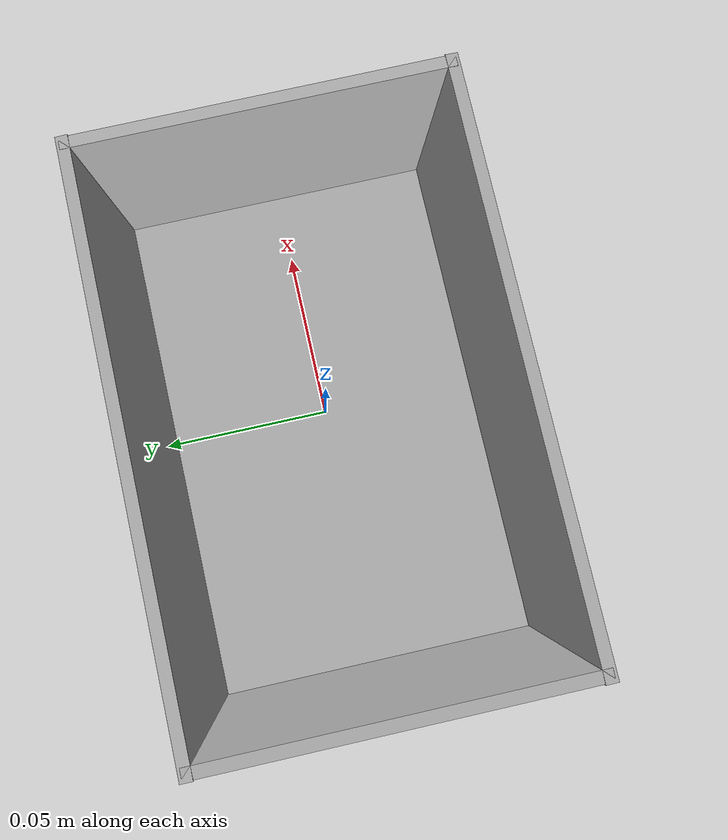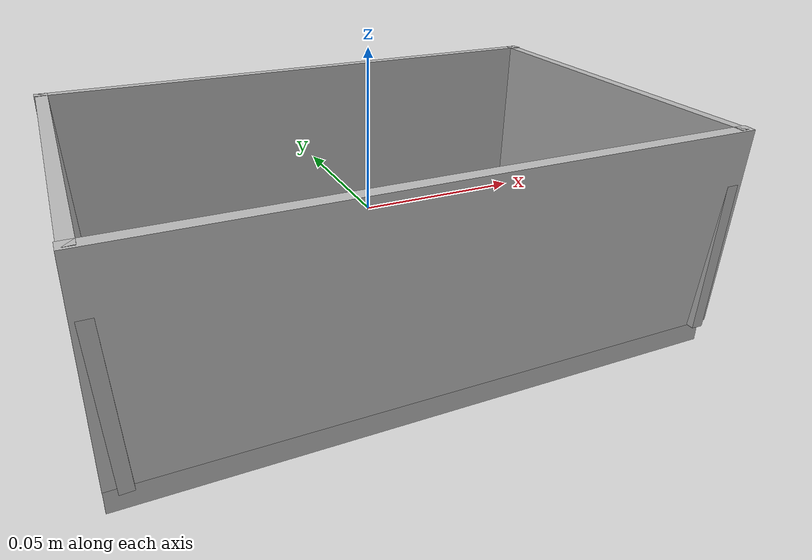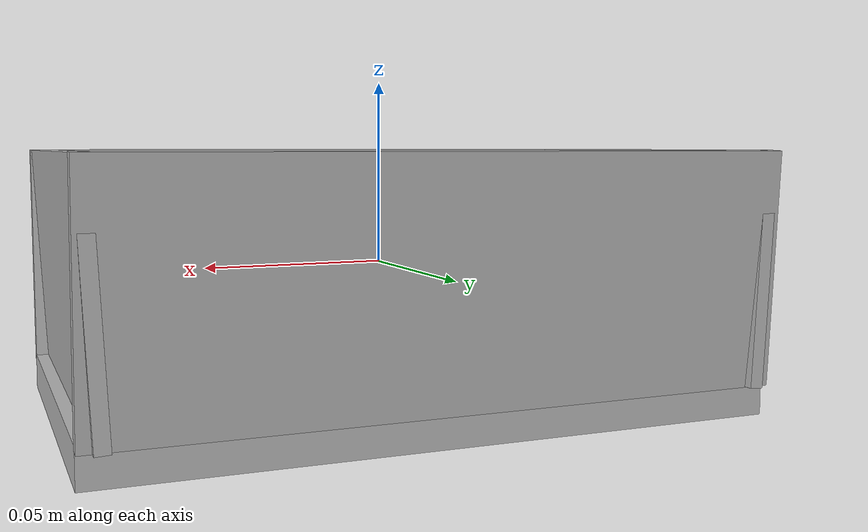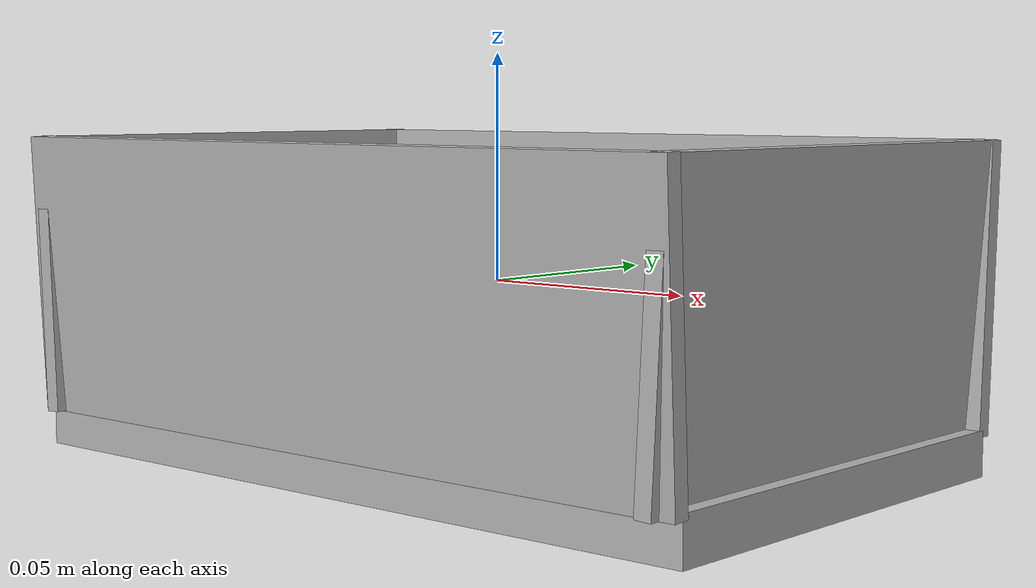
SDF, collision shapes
<?xml version="1.0" ?>
<!-- |    This document was autogenerated by xacro from container_amuse_body_small_black.sdf.xacro | -->
<!-- |    EDITING THIS FILE BY HAND IS NOT RECOMMENDED                                 | -->
<sdf version="1.6" xmlns:drake="drake.mit.edu">
  <model name="container_amuse_body_black">
    <link name="container_amuse_body_black">
      <pose>0 0 0 0 0 0</pose>
      <inertial>
        <pose>1.0568e-17 -8.6609e-17 -0.0093425 0 0 0</pose>
        <mass>0.037846</mass>
        <inertia>
          <ixx>8.7527e-05</ixx>
          <ixy>-1.6421e-19</ixy>
          <ixz>1.5401e-21</ixz>
          <iyy>0.00016503</iyy>
          <iyz>3.4579e-20</iyz>
          <izz>0.00021492</izz>
        </inertia>
      </inertial>
      <visual name="container_amuse_body_black">
        <!-- The orientation of the object in the glTF is not upright,
        so we must rotate by 90 degress here to make it so. -->
        <pose>0 0 0 -1.5708 0 0</pose>
        <geometry>
          <mesh>
            <uri>/data/kylehatch/lbm_eval/lbm_eval_models/kitchen_accessories/bins/assets/container_amuse_body_black.gltf</uri>
            <!-- Note: This model is explicitly scaled down. -->
            <scale>0.75 0.75 0.75</scale>
          </mesh>
        </geometry>
      </visual>
      <!-- Left wall collision -->
      <collision name="container_amuse_body_black_left_wall">
        <pose>-0.08625 0 0 0 -0.05 0</pose>
        <geometry>
          <box>
            <size>0.00375 0.11625 0.063</size>
          </box>
        </geometry>
        <drake:proximity_properties>
          <drake:mu_dynamic>0.3</drake:mu_dynamic>
          <drake:mu_static>0.3</drake:mu_static>
          <drake:hydroelastic_modulus>1e7</drake:hydroelastic_modulus>
          <drake:hunt_crossley_dissipation>40</drake:hunt_crossley_dissipation>
          <drake:compliant_hydroelastic/>
        </drake:proximity_properties>
      </collision>
      <!-- Right wall collision -->
      <collision name="container_amuse_body_black_right_wall">
        <pose>0.08625 0 0 0 0.05 0</pose>
        <geometry>
          <box>
            <size>0.00375 0.11625 0.063</size>
          </box>
        </geometry>
        <drake:proximity_properties>
          <drake:mu_dynamic>0.3</drake:mu_dynamic>
          <drake:mu_static>0.3</drake:mu_static>
          <drake:hydroelastic_modulus>1e7</drake:hydroelastic_modulus>
          <drake:hunt_crossley_dissipation>40</drake:hunt_crossley_dissipation>
          <drake:compliant_hydroelastic/>
        </drake:proximity_properties>
      </collision>
      <!-- Bottom Wall collision -->
      <collision name="container_amuse_body_black_bottom_wall">
        <pose>0 0.0555 0 -0.05 0 0</pose>
        <geometry>
          <box>
            <size>0.18 0.00375 0.063</size>
          </box>
        </geometry>
        <drake:proximity_properties>
          <drake:mu_dynamic>0.3</drake:mu_dynamic>
          <drake:mu_static>0.3</drake:mu_static>
          <drake:hydroelastic_modulus>1e7</drake:hydroelastic_modulus>
          <drake:hunt_crossley_dissipation>40</drake:hunt_crossley_dissipation>
          <drake:compliant_hydroelastic/>
        </drake:proximity_properties>
      </collision>
      <!-- Top wall collision -->
      <collision name="container_amuse_body_black_top_wall">
        <pose>0 -0.0555 0 0.05 0 0</pose>
        <geometry>
          <box>
            <size>0.18 0.00375 0.063</size>
          </box>
        </geometry>
        <drake:proximity_properties>
          <drake:mu_dynamic>0.3</drake:mu_dynamic>
          <drake:mu_static>0.3</drake:mu_static>
          <drake:hydroelastic_modulus>1e7</drake:hydroelastic_modulus>
          <drake:hunt_crossley_dissipation>40</drake:hunt_crossley_dissipation>
          <drake:compliant_hydroelastic/>
        </drake:proximity_properties>
      </collision>
      <!-- Floor collision -->
      <collision name="container_amuse_body_black_floor">
        <pose>0 0 -0.035 0 0 0</pose>
        <geometry>
          <box>
            <size>0.18 0.10719525 0.01</size>
          </box>
        </geometry>
        <drake:proximity_properties>
          <drake:mu_dynamic>0.3</drake:mu_dynamic>
          <drake:mu_static>0.3</drake:mu_static>
          <drake:hydroelastic_modulus>1e7</drake:hydroelastic_modulus>
          <drake:hunt_crossley_dissipation>40</drake:hunt_crossley_dissipation>
          <drake:compliant_hydroelastic/>
        </drake:proximity_properties>
      </collision>
    </link>
    <frame name="origin">
      <pose relative_to="container_amuse_body_black">0 0 0 0 0 0</pose>
    </frame>
    <frame name="bounding_box_center__z_up__x_orthogonal_to_shorter_face">
      <pose relative_to="container_amuse_body_black">0 0 0 0 0 0</pose>
    </frame>
    <frame name="bottom">
      <pose relative_to="container_amuse_body_black">0 0 -0.04 0 0 0</pose>
    </frame>
    <frame name="center">
      <pose relative_to="container_amuse_body_black">0 0 0 0 0 0</pose>
    </frame>
    <frame name="at_rest_right_side_up">
      <pose relative_to="container_amuse_body_black">0 0 -0.04 0 0 0</pose>
    </frame>
  </model>
</sdf>
